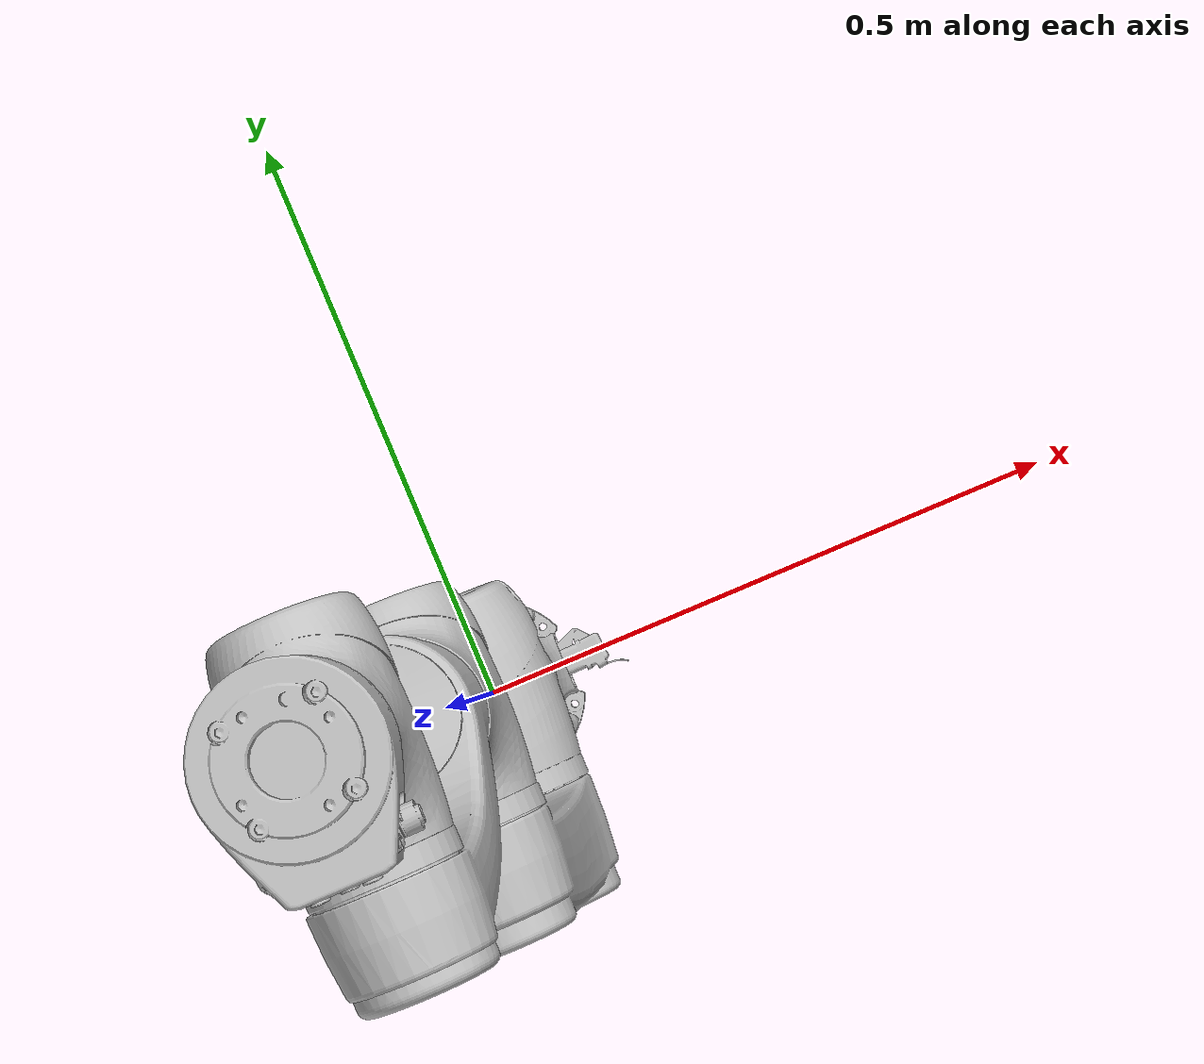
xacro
<robot
  name="elfin5_l" xmlns:xacro="http://www.ros.org/wiki/xacro">

  <xacro:include filename="$(find elfin_description)/urdf/materials.xacro" />

  <xacro:include filename="$(find elfin_description)/urdf/elfin_robot.gazebo" />

  <xacro:include filename="$(find elfin_description)/urdf/elfin_transmission.xacro" />

  <link name="world" />

  <joint name="world_base" type="fixed">
    <origin
      xyz="0 0 0"
      rpy="0 0 0" />
    <parent
      link="world" />
    <child
      link="elfin_base_link" />
  </joint>

  <link name="elfin_base_link" />

  <joint name="elfin_base_joint" type="fixed">
    <origin
      xyz="0 0 0"
      rpy="0 0 0" />
    <parent
      link="elfin_base_link" />
    <child
      link="elfin_base" />
  </joint>

  <link
    name="elfin_base">
    <inertial>
      <origin
        xyz="-0.000763828012447034 5.78534761012318E-06 0.0304416599943415"
        rpy="0 0 0" />
      <mass
        value="0.970239706050223" />
      <inertia
        ixx="0.00157696245666968"
        ixy="1.162310279099E-07"
        ixz="-2.16838482265701E-05"
        iyy="0.00144565496079807"
        iyz="-6.75796232258283E-08"
        izz="0.00236570554301517" />
    </inertial>
    <visual>
      <origin
        xyz="0 0 0"
        rpy="0 0 0" />
      <geometry>
        <mesh
          filename="package://elfin_description/meshes/elfin5_l/elfin_base.STL" />
      </geometry>
      <material
        name="">
        <color
          rgba="0.752941176470588 0.752941176470588 0.752941176470588 1" />
      </material>
    </visual>
    <collision>
      <origin
        xyz="0 0 0"
        rpy="0 0 0" />
      <geometry>
        <mesh
          filename="package://elfin_description/meshes/elfin5_l/elfin_base.STL" />
      </geometry>
    </collision>
  </link>
  <link
    name="elfin_link1">
    <inertial>
      <origin
        xyz="2.74291280945297E-06 -0.00431106908087994 -0.035749300042095"
        rpy="0 0 0" />
      <mass
        value="3.25128102774059" />
      <inertia
        ixx="0.0131139015939654"
        ixy="1.53830686129364E-07"
        ixz="4.14641049506695E-07"
        iyy="0.0123861178713594"
        iyz="0.00240614664669846"
        izz="0.00712273876232652" />
    </inertial>
    <visual>
      <origin
        xyz="0 0 0"
        rpy="0 0 0" />
      <geometry>
        <mesh
          filename="package://elfin_description/meshes/elfin5_l/elfin_link1.STL" />
      </geometry>
      <material
        name="">
        <color
          rgba="0.752941176470588 0.752941176470588 0.752941176470588 1" />
      </material>
    </visual>
    <collision>
      <origin
        xyz="0 0 0"
        rpy="0 0 0" />
      <geometry>
        <mesh
          filename="package://elfin_description/meshes/elfin5_l/elfin_link1.STL" />
      </geometry>
    </collision>
  </link>
  <joint
    name="elfin_joint1"
    type="revolute">
    <origin
      xyz="0 0 0.22"
      rpy="0 0 0" />
    <parent
      link="elfin_base" />
    <child
      link="elfin_link1" />
    <axis
      xyz="0 0 1" />
    <limit
      lower="-3.14"
      upper="3.14"
      effort="420"
      velocity="1.57" />
  </joint>
  <link
    name="elfin_link2">
    <inertial>
      <origin
        xyz="-1.15596547704752E-05 0.19342932513756 0.127226948268483"
        rpy="0 0 0" />
      <mass
        value="3.18677164197915" />
      <inertia
        ixx="0.0732638197436694"
        ixy="-2.56121994911038E-06"
        ixz="-5.3494258119166E-07"
        iyy="0.00314653544932596"
        iyz="0.00203923656352864"
        izz="0.0739827007427138" />
    </inertial>
    <visual>
      <origin
        xyz="0 0 0"
        rpy="0 0 0" />
      <geometry>
        <mesh
          filename="package://elfin_description/meshes/elfin5_l/elfin_link2.STL" />
      </geometry>
      <material
        name="">
        <color
          rgba="0.752941176470588 0.752941176470588 0.752941176470588 1" />
      </material>
    </visual>
    <collision>
      <origin
        xyz="0 0 0"
        rpy="0 0 0" />
      <geometry>
        <mesh
          filename="package://elfin_description/meshes/elfin5_l/elfin_link2.STL" />
      </geometry>
    </collision>
  </link>
  <joint
    name="elfin_joint2"
    type="revolute">
    <origin
      xyz="0 0 0"
      rpy="1.5708 0 0" />
    <parent
      link="elfin_link1" />
    <child
      link="elfin_link2" />
    <axis
      xyz="0 0 1" />
    <limit
      lower="-2.35"
      upper="2.35"
      effort="420"
      velocity="1.57" />
  </joint>
  <link
    name="elfin_link3">
    <inertial>
      <origin
        xyz="0.0290082762777305 8.22342441060212E-06 -0.00396673299833943"
        rpy="0 0 0" />
      <mass
        value="1.98577160134587" />
      <inertia
        ixx="0.00325219350368072"
        ixy="-2.70075819062165E-07"
        ixz="-0.00114506857359463"
        iyy="0.00594604196480367"
        iyz="7.00616139043877E-07"
        izz="0.00528005539909333" />
    </inertial>
    <visual>
      <origin
        xyz="0 0 0"
        rpy="0 0 0" />
      <geometry>
        <mesh
          filename="package://elfin_description/meshes/elfin5_l/elfin_link3.STL" />
      </geometry>
      <material
        name="">
        <color
          rgba="0.752941176470588 0.752941176470588 0.752941176470588 1" />
      </material>
    </visual>
    <collision>
      <origin
        xyz="0 0 0"
        rpy="0 0 0" />
      <geometry>
        <mesh
          filename="package://elfin_description/meshes/elfin5_l/elfin_link3.STL" />
      </geometry>
    </collision>
  </link>
  <joint
    name="elfin_joint3"
    type="revolute">
    <origin
      xyz="0 0.455 0"
      rpy="-3.1416 0 1.5708" />
    <parent
      link="elfin_link2" />
    <child
      link="elfin_link3" />
    <axis
      xyz="0 0 1" />
    <limit
      lower="-2.61"
      upper="2.61"
      effort="200"
      velocity="1.57" />
  </joint>
  <link
    name="elfin_link4">
    <inertial>
      <origin
        xyz="-2.41204888928688E-05 -0.0426547830278666 0.280754104084487"
        rpy="0 0 0" />
      <mass
        value="1.93993713587905" />
      <inertia
        ixx="0.0251007737439392"
        ixy="-2.54169536522339E-06"
        ixz="8.29699603012133E-06"
        iyy="0.0220033691095871"
        iyz="0.00719055768488965"
        izz="0.0050341525470247" />
    </inertial>
    <visual>
      <origin
        xyz="0 0 0"
        rpy="0 0 0" />
      <geometry>
        <mesh
          filename="package://elfin_description/meshes/elfin5_l/elfin_link4.STL" />
      </geometry>
      <material
        name="">
        <color
          rgba="0.752941176470588 0.752941176470588 0.752941176470588 1" />
      </material>
    </visual>
    <collision>
      <origin
        xyz="0 0 0"
        rpy="0 0 0" />
      <geometry>
        <mesh
          filename="package://elfin_description/meshes/elfin5_l/elfin_link4.STL" />
      </geometry>
    </collision>
  </link>
  <joint
    name="elfin_joint4"
    type="revolute">
    <origin
      xyz="0 0 0"
      rpy="1.5708 0 1.5708" />
    <parent
      link="elfin_link3" />
    <child
      link="elfin_link4" />
    <axis
      xyz="0 0 1" />
    <limit
      lower="-3.14"
      upper="3.14"
      effort="200"
      velocity="1.57" />
  </joint>
  <link
    name="elfin_link5">
    <inertial>
      <origin
        xyz="-1.05058414287967E-06 -0.0219935499274229 -0.00313939649619641"
        rpy="0 0 0" />
      <mass
        value="1.18717986266679" />
      <inertia
        ixx="0.00223607665617236"
        ixy="7.69391553133098E-08"
        ixz="1.87231557487145E-07"
        iyy="0.00135159851477333"
        iyz="0.000420977821390682"
        izz="0.0019323650554516" />
    </inertial>
    <visual>
      <origin
        xyz="0 0 0"
        rpy="0 0 0" />
      <geometry>
        <mesh
          filename="package://elfin_description/meshes/elfin5_l/elfin_link5.STL" />
      </geometry>
      <material
        name="">
        <color
          rgba="0.752941176470588 0.752941176470588 0.752941176470588 1" />
      </material>
    </visual>
    <collision>
      <origin
        xyz="0 0 0"
        rpy="0 0 0" />
      <geometry>
        <mesh
          filename="package://elfin_description/meshes/elfin5_l/elfin_link5.STL" />
      </geometry>
    </collision>
  </link>
  <joint
    name="elfin_joint5"
    type="revolute">
    <origin
      xyz="0 0 0.495"
      rpy="-1.5708 0 0" />
    <parent
      link="elfin_link4" />
    <child
      link="elfin_link5" />
    <axis
      xyz="0 0 1" />
    <limit
      lower="-2.56"
      upper="2.56"
      effort="69"
      velocity="1.57" />
  </joint>
  <link
    name="elfin_link6">
    <inertial>
      <origin
        xyz="-1.59841609336064E-05 -0.000344916694151934 0.128921909891494"
        rpy="0 0 0" />
      <mass
        value="0.281755133125028" />
      <inertia
        ixx="0.000141506869034609"
        ixy="-3.26513457523227E-08"
        ixz="7.38940959271975E-08"
        iyy="0.000144516478401501"
        iyz="-8.86072908389216E-08"
        izz="0.000252050888045656" />
    </inertial>
    <visual>
      <origin
        xyz="0 0 0"
        rpy="0 0 0" />
      <geometry>
        <mesh
          filename="package://elfin_description/meshes/elfin5_l/elfin_link6.STL" />
      </geometry>
      <material
        name="">
        <color
          rgba="0.752941176470588 0.752941176470588 0.752941176470588 1" />
      </material>
    </visual>
    <collision>
      <origin
        xyz="0 0 0"
        rpy="0 0 0" />
      <geometry>
        <mesh
          filename="package://elfin_description/meshes/elfin5_l/elfin_link6.STL" />
      </geometry>
    </collision>
  </link>
  <joint
    name="elfin_joint6"
    type="revolute">
    <origin
      xyz="0 0 0"
      rpy="1.5708 0 0" />
    <parent
      link="elfin_link5" />
    <child
      link="elfin_link6" />
    <axis
      xyz="0 0 1" />
    <limit
      lower="-3.14"
      upper="3.14"
      effort="69"
      velocity="1.57" />
  </joint>
  <link
    name="elfin_end_link"/>
  <joint
    name="elfin_end_joint"
    type="fixed">
    <origin
      xyz="0 0 0.1565"
      rpy="0 0 0" />
    <parent
      link="elfin_link6" />
    <child
      link="elfin_end_link" />
    <axis
      xyz="0 0 0" />
  </joint>

  <link name="elfin_dummy_gripper"/>

  <joint name="elfin_dummy_joint" type="fixed">
    <origin
      xyz="0 0.109 0"
      rpy="-1.5708 1.5708 0" />
    <parent
      link="elfin_link6" />
    <child
      link="elfin_dummy_gripper" />
  </joint>

</robot>

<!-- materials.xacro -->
<robot xmlns:xacro="http://www.ros.org/wiki/xacro">

  <material name="black">
    <color rgba="0.0 0.0 0.0 1.0"/>
  </material>

  <material name="blue">
    <color rgba="0.0 0.0 0.8 1.0"/>
  </material>

  <material name="green">
    <color rgba="0.0 0.8 0.0 1.0"/>
  </material>

  <material name="grey">
    <color rgba="0.2 0.2 0.2 1.0"/>
  </material>

  <material name="orange">
    <color rgba="${255/255} ${108/255} ${10/255} 1.0"/>
  </material>

  <material name="brown">
    <color rgba="${222/255} ${207/255} ${195/255} 1.0"/>
  </material>

  <material name="red">
    <color rgba="0.8 0.0 0.0 1.0"/>
  </material>

  <material name="white">
    <color rgba="1.0 1.0 1.0 1.0"/>
  </material>

  <material name="metal">
    <color rgba="0.768627450980392 0.749019607843137 0.729411764705882 1" />
  </material>

  <material name="metal_grey">
    <color rgba="0.501960784313725 0.501960784313725 0.501960784313725 1" />
  </material>

  <material name="metal_white">
    <color rgba="0.866666666666667 0.866666666666667 0.890196078431373 1" />
  </material>

</robot>
